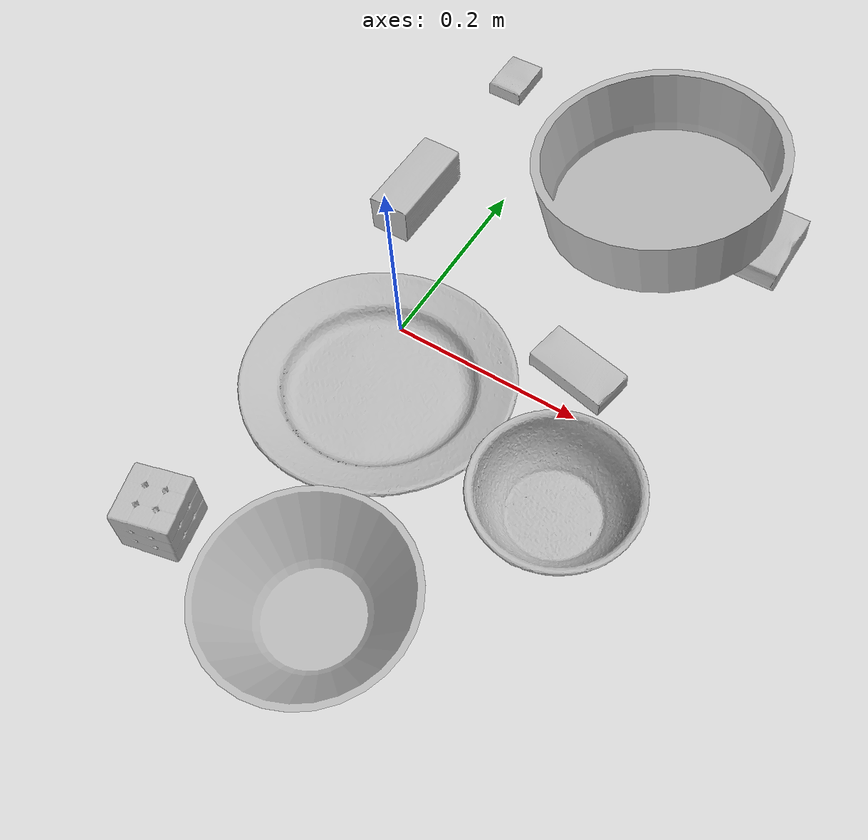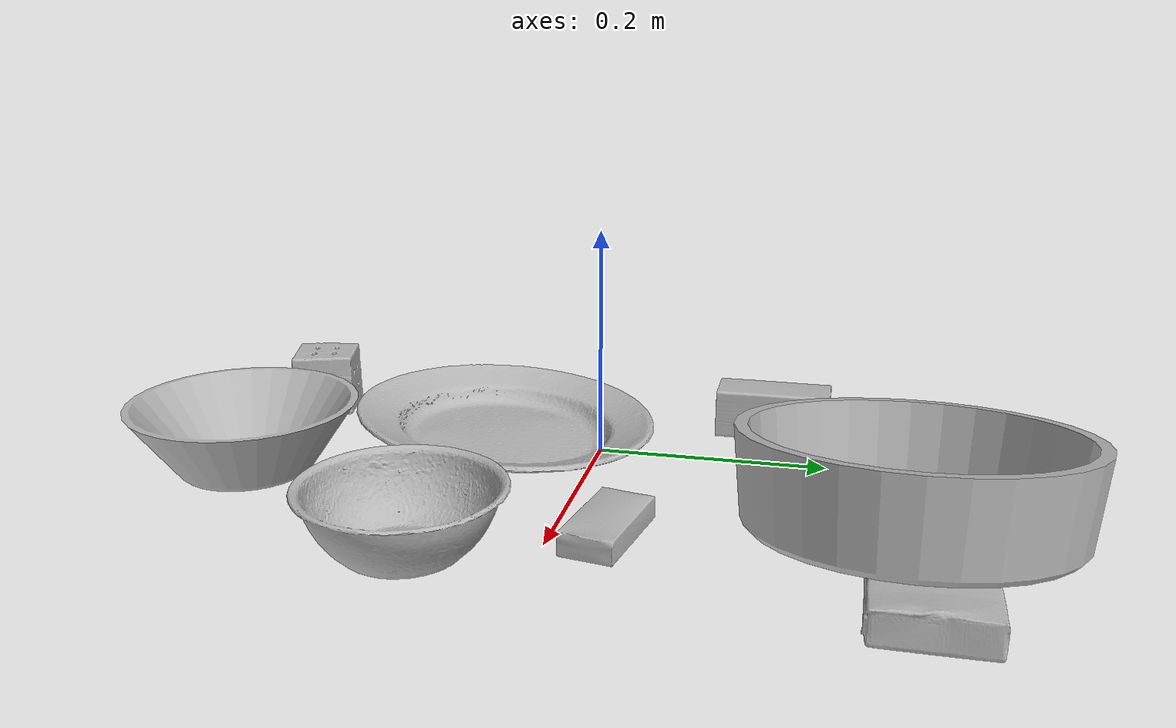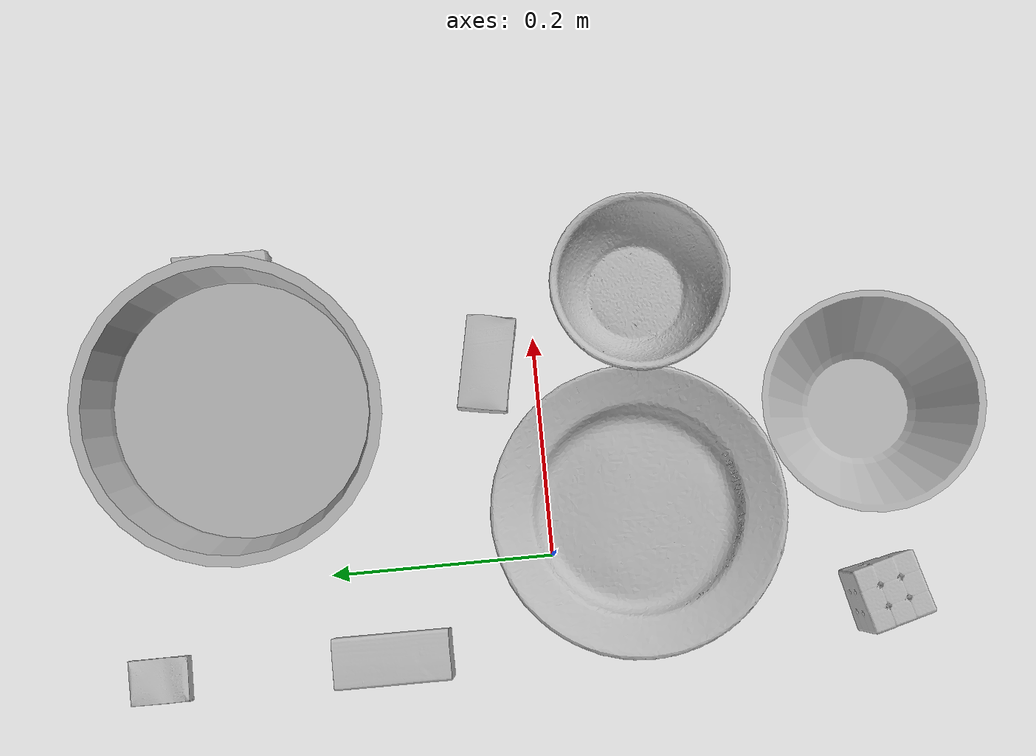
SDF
<sdf version="1.4">
  <world name="default">
    <light name="light1" type="point">
      <pose>0 0 1 0 0 0</pose>
      <diffuse>3 3 3 1</diffuse>
      <specular>3 3 3 1</specular>
    </light>
    <light name="light2" type="point">
      <pose>0 0.5 2 0 0 0</pose>
      <diffuse>1 1 1 1</diffuse>
      <specular>1 1 1 1</specular>
    </light>
    <light name="light3" type="point">
      <pose>0 0.5 2 0 0 0</pose>
      <diffuse>3 3 3 1</diffuse>
      <specular>3 3 3 1</specular>
    </light>
    <scene>
      <ambient>0.7 0.7 0.7</ambient>
    </scene>
    <model name="box1">
      <link name="link_box1">
        <collision name="default">
          <geometry>
            <mesh>
              <uri>model://gelatin_box/collision_meshes/collision.obj</uri>
              <scale>1.0 1.0 1.0</scale>
            </mesh>
          </geometry>
          <surface>
            <friction>
              <ode>
                <mu>0.5</mu>
                <mu2>0.5</mu2>
              </ode>
            </friction>
          <contact>
        <ode>
            <max_vel>0</max_vel>
            <min_depth>0.0001</min_depth>
            <kp>1e8</kp>
        </ode>
    </contact></surface>
        </collision>
        <visual name="default">
          <geometry>
            <mesh>
              <uri>model://gelatin_box/visual_meshes/visual.dae</uri>
              <scale>1.0 1.0 1.0</scale>
            </mesh>
          </geometry>
        </visual>
        <inertial>
          <mass>0.24885821342468262</mass>
          <pose>0.0004319618456065655 0.00011156872642459348 -0.0003640321083366871 -0.0010503721884538221 -0.004755817759936981 0.016440553883063976</pose>
          <inertia>
            <ixx>0.0001756736</ixx>
            <iyy>0.00012548274</iyy>
            <izz>0.00026741438</izz>
            <ixy>0</ixy>
            <ixz>0</ixz>
            <iyz>0</iyz>
          </inertia>
        </inertial>
      </link>
      <pose>0.26304593682289124 0.2780303657054901 0.015167580917477608 0.00562243181337781 -0.007352381455552297 -0.010791514176425614</pose>
    </model>
    <model name="box11">
      <link name="link_box11">
        <collision name="default">
          <geometry>
            <mesh>
              <uri>model://pudding_box/collision_meshes/collision.obj</uri>
              <scale>0.5 0.5 0.5</scale>
            </mesh>
          </geometry>
          <surface>
            <friction>
              <ode>
                <mu>0.5</mu>
                <mu2>0.5</mu2>
              </ode>
            </friction>
          <contact>
        <ode>
            <max_vel>0</max_vel>
            <min_depth>0.0001</min_depth>
            <kp>1e8</kp>
        </ode>
    </contact></surface>
        </collision>
        <visual name="default">
          <geometry>
            <mesh>
              <uri>model://pudding_box/visual_meshes/visual.dae</uri>
              <scale>0.5 0.5 0.5</scale>
            </mesh>
          </geometry>
        </visual>
        <inertial>
          <mass>0.031047143042087555</mass>
          <pose>0.00024474109522998333 0.00040339428232982755 -0.0002594413817860186 0.005213102716306955 -0.006603798272123425 0.020079828883677098</pose>
          <inertia>
            <ixx>8.774299e-06</ixx>
            <iyy>5.903411e-06</iyy>
            <izz>1.2957546e-05</izz>
            <ixy>0</ixy>
            <ixz>0</ixz>
            <iyz>0</iyz>
          </inertia>
        </inertial>
      </link>
      <pose>0.03422599658370018 -0.09772081673145294 0.010937150567770004 -0.05910532462796519 -0.007803822867242142 -0.36264175299111523</pose>
    </model>
    <model name="box2">
      <link name="link_box2">
        <collision name="default">
          <geometry>
            <mesh>
              <uri>model://rubiks_cube/collision_meshes/collision.obj</uri>
              <scale>1.0 1.0 1.0</scale>
            </mesh>
          </geometry>
          <surface>
            <friction>
              <ode>
                <mu>0.5</mu>
                <mu2>0.5</mu2>
              </ode>
            </friction>
          <contact>
        <ode>
            <max_vel>0</max_vel>
            <min_depth>0.0001</min_depth>
            <kp>1e8</kp>
        </ode>
    </contact></surface>
        </collision>
        <visual name="default">
          <geometry>
            <mesh>
              <uri>model://rubiks_cube/visual_meshes/visual.dae</uri>
              <scale>1.0 1.0 1.0</scale>
            </mesh>
          </geometry>
        </visual>
        <inertial>
          <mass>0.2106715589761734</mass>
          <pose>2.6721041649580002e-05 5.2569666877388954e-05 -7.264316536748083e-06 -0.05467273700930805 -0.09814071961497198 -0.03445608496414611</pose>
          <inertia>
            <ixx>0.0001164102</ixx>
            <iyy>0.000115867326</iyy>
            <izz>0.00011737483</izz>
            <ixy>0</ixy>
            <ixz>0</ixz>
            <iyz>0</iyz>
          </inertia>
        </inertial>
      </link>
      <pose>-0.058602508157491684 -0.28947168588638306 0.02867898903787136 -1.8534976196846176e-06 4.2284600263771515e-08 -1.3142382658445833</pose>
    </model>
    <model name="box21">
      <link name="link_box21">
        <collision name="default">
          <geometry>
            <mesh>
              <uri>model://wood_block/collision_meshes/collision.obj</uri>
              <scale>0.5 0.5 0.5</scale>
            </mesh>
          </geometry>
          <surface>
            <friction>
              <ode>
                <mu>0.5</mu>
                <mu2>0.5</mu2>
              </ode>
            </friction>
          <contact>
        <ode>
            <max_vel>0</max_vel>
            <min_depth>0.0001</min_depth>
            <kp>1e8</kp>
        </ode>
    </contact></surface>
        </collision>
        <visual name="default">
          <geometry>
            <mesh>
              <uri>model://wood_block/visual_meshes/visual.dae</uri>
              <scale>0.5 0.5 0.5</scale>
            </mesh>
          </geometry>
        </visual>
        <inertial>
          <mass>0.146076962351799</mass>
          <pose>-2.9066577553749084e-06 -0.000285404734313488 0.00013204291462898254 -0.052208177866913126 -0.0051926955252411455 -0.006861378006552687</pose>
          <inertia>
            <ixx>4.8868267e-05</ixx>
            <iyy>0.00015437487</iyy>
            <izz>0.00015379742</izz>
            <ixy>0</ixy>
            <ixz>0</ixz>
            <iyz>0</iyz>
          </inertia>
        </inertial>
      </link>
      <pose>-0.07789008319377899 0.1479499489068985 0.022629264742136 -0.0052085999362572015 0.005718782541986457 1.5738794278745503</pose>
    </model>
    <model name="box3">
      <link name="link_box3">
        <collision name="default">
          <geometry>
            <mesh>
              <uri>model://cracker_box/collision_meshes/collision.obj</uri>
              <scale>0.25 0.25 0.25</scale>
            </mesh>
          </geometry>
          <surface>
            <friction>
              <ode>
                <mu>0.5</mu>
                <mu2>0.5</mu2>
              </ode>
            </friction>
          <contact>
        <ode>
            <max_vel>0</max_vel>
            <min_depth>0.0001</min_depth>
            <kp>1e8</kp>
        </ode>
    </contact></surface>
        </collision>
        <visual name="default">
          <geometry>
            <mesh>
              <uri>model://cracker_box/visual_meshes/visual.dae</uri>
              <scale>0.25 0.25 0.25</scale>
            </mesh>
          </geometry>
        </visual>
        <inertial>
          <mass>0.0398951955139637</mass>
          <pose>0.0002366032567806542 6.358561950037256e-05 -0.0004257383698131889 -0.00031620768741309833 -0.011106487737478729 0.0025467957005107203</pose>
          <inertia>
            <ixx>6.342223e-06</ixx>
            <iyy>1.0472255e-05</iyy>
            <izz>1.494487e-05</izz>
            <ixy>0</ixy>
            <ixz>0</ixz>
            <iyz>0</iyz>
          </inertia>
        </inertial>
      </link>
      <pose>-0.07952665537595749 0.3576793372631073 0.009120447561144829 -0.011788080916937381 -0.0073671066521547954 1.5709238658272302</pose>
    </model>
    <model name="box31">
      <link name="link_box31">
        <collision name="default">
          <geometry>
            <mesh>
              <uri>model://sugar_box/collision_meshes/collision.obj</uri>
              <scale>0.5 0.5 0.5</scale>
            </mesh>
          </geometry>
          <surface>
            <friction>
              <ode>
                <mu>0.5</mu>
                <mu2>0.5</mu2>
              </ode>
            </friction>
          <contact>
        <ode>
            <max_vel>0</max_vel>
            <min_depth>0.0001</min_depth>
            <kp>1e8</kp>
        </ode>
    </contact></surface>
        </collision>
        <visual name="default">
          <geometry>
            <mesh>
              <uri>model://sugar_box/visual_meshes/visual.dae</uri>
              <scale>0.5 0.5 0.5</scale>
            </mesh>
          </geometry>
        </visual>
        <inertial>
          <mass>0.051384337246418</mass>
          <pose>0.0005171863595023751 1.924554817378521e-05 -0.00018182402709499002 -0.00040462574757428057 0.0010506634050244472 0.0026153787892360275</pose>
          <inertia>
            <ixx>1.070332e-05</ixx>
            <iyy>3.4595334e-05</iyy>
            <izz>4.1414743e-05</izz>
            <ixy>0</ixy>
            <ixz>0</ixz>
            <iyz>0</iyz>
          </inertia>
        </inertial>
      </link>
      <pose>0.1786748468875885 0.043676964938640594 0.011399299837648869 0.0007748408869554509 -0.02343309259232213 2.9515767016851857</pose>
    </model>
    <model name="plate1">
      <link name="link_plate1">
        <collision name="default">
          <geometry>
            <mesh>
              <uri>model://plate/collision_meshes/collision.obj</uri>
              <scale>1.0 1.0 1.0</scale>
            </mesh>
          </geometry>
          <surface>
            <friction>
              <ode>
                <mu>0.5</mu>
                <mu2>0.5</mu2>
              </ode>
            </friction>
          <contact>
        <ode>
            <max_vel>0</max_vel>
            <min_depth>0.0001</min_depth>
            <kp>1e8</kp>
        </ode>
    </contact></surface>
        </collision>
        <visual name="default">
          <geometry>
            <mesh>
              <uri>model://plate/visual_meshes/visual.dae</uri>
              <scale>1.0 1.0 1.0</scale>
            </mesh>
          </geometry>
        </visual>
        <inertial>
          <mass>0.18845537304878235</mass>
          <pose>-0.0006044640904292464 0.00027825849247165024 -0.0010561994276940823 0.0022188128524267426 -0.0032254640251278745 0.45260123674794867</pose>
          <inertia>
            <ixx>0.0008815983</ixx>
            <iyy>0.00087316614</iyy>
            <izz>0.001724274</izz>
            <ixy>0</ixy>
            <ixz>0</ixz>
            <iyz>0</iyz>
          </inertia>
        </inertial>
      </link>
      <pose>0.032169409096241 -0.07853971421718597 0.030873311683535576 0.07066154177923514 0.03387584007887403 2.8784809110079723</pose>
    </model>
    <model name="bowl1">
      <link name="link_bowl1">
        <collision name="default">
          <geometry>
            <mesh>
              <uri>model://bowl_a/collision_meshes/collision.obj</uri>
              <scale>1.0 1.0 1.0</scale>
            </mesh>
          </geometry>
          <surface>
            <friction>
              <ode>
                <mu>0.5</mu>
                <mu2>0.5</mu2>
              </ode>
            </friction>
          <contact>
        <ode>
            <max_vel>0</max_vel>
            <min_depth>0.0001</min_depth>
            <kp>1e8</kp>
        </ode>
    </contact></surface>
        </collision>
        <visual name="default">
          <geometry>
            <mesh>
              <uri>model://bowl_a/visual_meshes/visual.dae</uri>
              <scale>1.0 1.0 1.0</scale>
            </mesh>
          </geometry>
        </visual>
        <inertial>
          <mass>0.46761196851730347</mass>
          <pose>0.0002786737459246069 4.731199442176148e-05 -0.0013765295734629035 -0.0009805421566516771 -0.0010938164969012795 -0.19123134440759623</pose>
          <inertia>
            <ixx>0.0013313128</ixx>
            <iyy>0.0013394863</iyy>
            <izz>0.0023677913</izz>
            <ixy>0</ixy>
            <ixz>0</ixz>
            <iyz>0</iyz>
          </inertia>
        </inertial>
      </link>
      <pose>0.10818860679864883 -0.2904568612575531 0.0303830336779356 -3.275141739576012e-06 2.9078444435677356e-06 -2.1157400538430466</pose>
    </model>
    <model name="plate2">
      <link name="link_plate2">
        <collision name="default">
          <geometry>
            <mesh>
              <uri>model://pan_tefal/collision_meshes/collision.obj</uri>
              <scale>1.0 1.0 1.0</scale>
            </mesh>
          </geometry>
          <surface>
            <friction>
              <ode>
                <mu>0.5</mu>
                <mu2>0.5</mu2>
              </ode>
            </friction>
          <contact>
        <ode>
            <max_vel>0</max_vel>
            <min_depth>0.0001</min_depth>
            <kp>1e8</kp>
        </ode>
    </contact></surface>
        </collision>
        <visual name="default">
          <geometry>
            <mesh>
              <uri>model://pan_tefal/visual_meshes/visual.dae</uri>
              <scale>1.0 1.0 1.0</scale>
            </mesh>
          </geometry>
        </visual>
        <inertial>
          <mass>0.7360396385192871</mass>
          <pose>-0.00018002057913690805 3.2791922421893105e-05 -0.00851493515074253 0.0008190284364517867 -0.0003301440136962699 -0.3318532577359739</pose>
          <inertia>
            <ixx>0.0050808466</ixx>
            <iyy>0.005113603</iyy>
            <izz>0.00935286</izz>
            <ixy>0</ixy>
            <ixz>0</ixz>
            <iyz>0</iyz>
          </inertia>
        </inertial>
      </link>
      <pose>0.14925210177898407 0.2660743296146393 0.05512998253107071 0.1391974287291925 -0.04061284082791025 -1.2580312448567292</pose>
    </model>
    <model name="bowl2">
      <link name="link_bowl2">
        <collision name="default">
          <geometry>
            <mesh>
              <uri>model://bowl/collision_meshes/collision.obj</uri>
              <scale>1.0 1.0 1.0</scale>
            </mesh>
          </geometry>
          <surface>
            <friction>
              <ode>
                <mu>0.5</mu>
                <mu2>0.5</mu2>
              </ode>
            </friction>
          <contact>
        <ode>
            <max_vel>0</max_vel>
            <min_depth>0.0001</min_depth>
            <kp>1e8</kp>
        </ode>
    </contact></surface>
        </collision>
        <visual name="default">
          <geometry>
            <mesh>
              <uri>model://bowl/visual_meshes/visual.dae</uri>
              <scale>1.0 1.0 1.0</scale>
            </mesh>
          </geometry>
        </visual>
        <inertial>
          <mass>0.11974068731069565</mass>
          <pose>0.00020445311383809894 -0.0010302052833139896 -0.0008042640401981771 -0.015764214972767723 0.014546668027170537 0.7140316235505751</pose>
          <inertia>
            <ixx>0.00027505384</ixx>
            <iyy>0.000268908</iyy>
            <izz>0.00046273507</izz>
            <ixy>0</ixy>
            <ixz>0</ixz>
            <iyz>0</iyz>
          </inertia>
        </inertial>
      </link>
      <pose>0.23396684229373932 -0.09846974909305573 0.02778002619743347 -5.360193281509831e-07 2.8031604884439594e-07 -0.6881844395864533</pose>
    </model>
  <physics type="ode">
      <max_contacts>50</max_contacts>
      <ode>
        <solver>
          <type>quick</type>
          <iters>75</iters>
        </solver>
        <constraints>
          <contact_max_correcting_vel>0</contact_max_correcting_vel>
          <contact_surface_layer>0</contact_surface_layer>
        </constraints>
      </ode>
    </physics></world>
</sdf>
